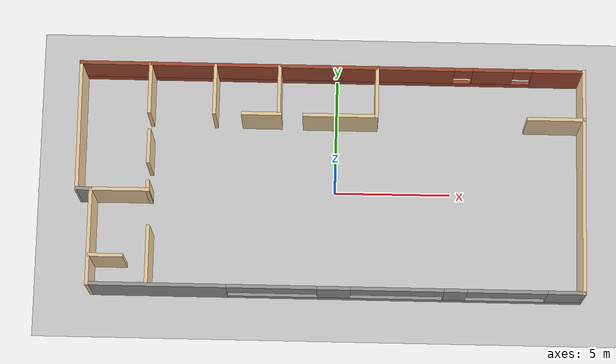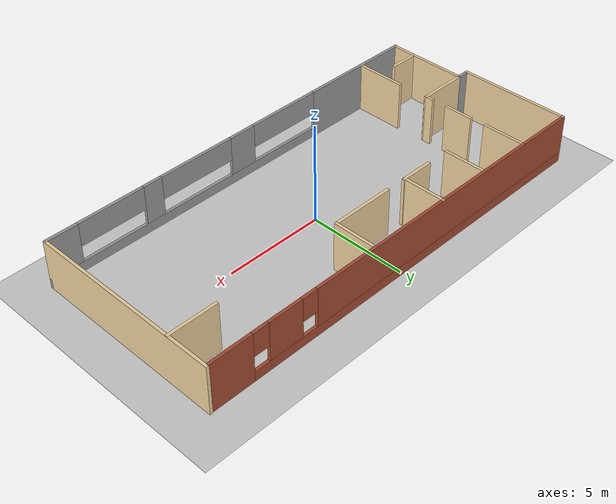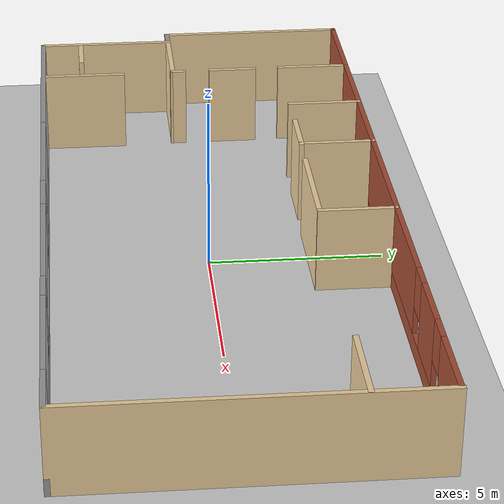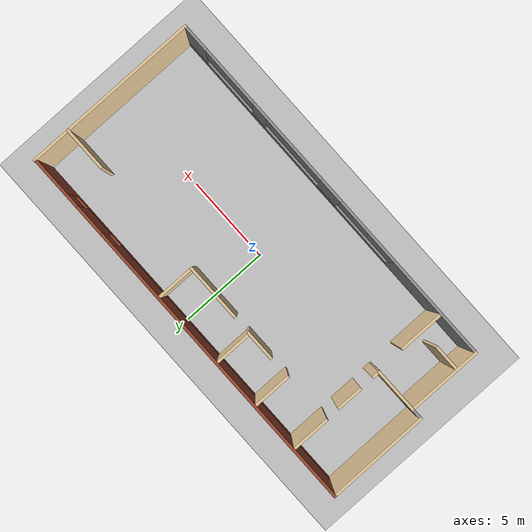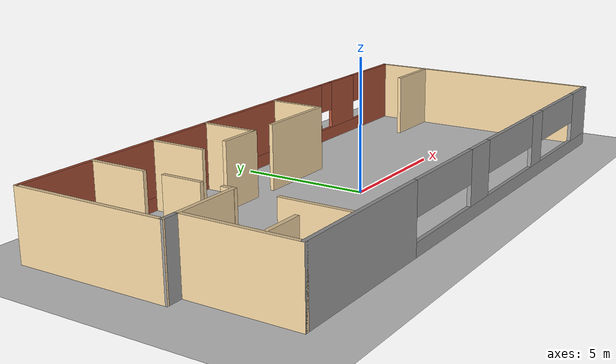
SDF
<sdf version="1.6">
 <world name="default">
  <model name="ground_plane">
   <static>1</static>
   <link name="link">
    <collision name="collision">
     <geometry><plane><normal>0 0 1</normal><size>100 100</size></plane></geometry>
     <surface>
      <contact><collide_bitmask>65535</collide_bitmask></contact>
      <friction><ode><mu>100</mu><mu2>50</mu2></ode></friction>
     </surface>
    </collision>
    <visual name="visual">
     <cast_shadows>0</cast_shadows>
     <geometry><plane><normal>0 0 1</normal><size>100 100</size></plane></geometry>
     <material>
      <script><uri>file://media/materials/scripts/gazebo.material</uri><name>Gazebo/Grey</name></script>
     </material>
    </visual>
   </link>
  </model>
  <model name="structureP1">
   <link name="Wall_0">
    <pose>-0.049796 4.83077 0 0 -0 3.14159</pose>
    <visual name="Wall_0_Visual_0">
     <pose>-9.78293 0 1.25 0 -0 0</pose>
     <geometry><box><size>2.18414 0.15 2.5</size></box></geometry>
     <material>
      <script><uri>file://media/materials/scripts/gazebo.material</uri><name>Gazebo/Bricks</name></script>
      <ambient>1 1 1 1</ambient>
      <shader type="pixel"/>
      <diffuse>1 1 1 1</diffuse>
      <specular>0.2 0.2 0.2 1</specular>
      <emissive>0 0 0 1</emissive>
     </material>
     <meta><layer>0</layer></meta>
    </visual>
    <visual name="Wall_0_Visual_1">
     <pose>1.09207 0 0.25 0 -0 0</pose>
     <geometry><box><size>19.5659 0.15 0.5</size></box></geometry>
     <material>
      <script><uri>file://media/materials/scripts/gazebo.material</uri><name>Gazebo/Bricks</name></script>
      <ambient>1 1 1 1</ambient>
      <shader type="pixel"/>
      <diffuse>1 1 1 1</diffuse>
      <specular>0.2 0.2 0.2 1</specular>
      <emissive>0 0 0 1</emissive>
     </material>
     <meta><layer>0</layer></meta>
    </visual>
    <visual name="Wall_0_Visual_2">
     <pose>-7.00793 0 1.5 0 -0 0</pose>
     <geometry><box><size>1.76586 0.15 2</size></box></geometry>
     <material>
      <script><uri>file://media/materials/scripts/gazebo.material</uri><name>Gazebo/Bricks</name></script>
      <ambient>1 1 1 1</ambient>
      <shader type="pixel"/>
      <diffuse>1 1 1 1</diffuse>
      <specular>0.2 0.2 0.2 1</specular>
      <emissive>0 0 0 1</emissive>
     </material>
     <meta><layer>0</layer></meta>
    </visual>
    <visual name="Wall_0_Visual_3">
     <pose>2.775 0 1.5 0 -0 0</pose>
     <geometry><box><size>16.2 0.15 2</size></box></geometry>
     <material>
      <script><uri>file://media/materials/scripts/gazebo.material</uri><name>Gazebo/Bricks</name></script>
      <ambient>1 1 1 1</ambient>
      <shader type="pixel"/>
      <diffuse>1 1 1 1</diffuse>
      <specular>0.2 0.2 0.2 1</specular>
      <emissive>0 0 0 1</emissive>
     </material>
     <meta><layer>0</layer></meta>
    </visual>
    <visual name="Wall_0_Visual_4">
     <pose>-8.29086 0 1.9 0 -0 0</pose>
     <geometry><box><size>0.8 0.15 1.2</size></box></geometry>
     <material>
      <script><uri>file://media/materials/scripts/gazebo.material</uri><name>Gazebo/Bricks</name></script>
      <ambient>1 1 1 1</ambient>
      <shader type="pixel"/>
      <diffuse>1 1 1 1</diffuse>
      <specular>0.2 0.2 0.2 1</specular>
      <emissive>0 0 0 1</emissive>
     </material>
     <meta><layer>0</layer></meta>
    </visual>
    <visual name="Wall_0_Visual_5">
     <pose>-5.72499 0 1.9 0 -0 0</pose>
     <geometry><box><size>0.8 0.15 1.2</size></box></geometry>
     <material>
      <script><uri>file://media/materials/scripts/gazebo.material</uri><name>Gazebo/Bricks</name></script>
      <ambient>1 1 1 1</ambient>
      <shader type="pixel"/>
      <diffuse>1 1 1 1</diffuse>
      <specular>0.2 0.2 0.2 1</specular>
      <emissive>0 0 0 1</emissive>
     </material>
     <meta><layer>0</layer></meta>
    </visual>
    <collision name="Wall_0_Collision_2">
     <pose>-7.00793 0 1.5 0 -0 0</pose>
     <geometry><box><size>1.76586 0.15 2</size></box></geometry>
     <surface>
      <friction>
       <ode><mu>1</mu><mu2>1</mu2><fdir1>0 0 0</fdir1><slip1>0</slip1><slip2>0</slip2></ode>
       <torsional>
        <coefficient>1</coefficient>
        <patch_radius>0</patch_radius>
        <surface_radius>0</surface_radius>
        <use_patch_radius>1</use_patch_radius>
        <ode><slip>0</slip></ode>
       </torsional>
      </friction>
      <bounce><restitution_coefficient>0</restitution_coefficient><threshold>1e+06</threshold></bounce>
      <contact>
       <collide_without_contact>0</collide_without_contact>
       <collide_without_contact_bitmask>1</collide_without_contact_bitmask>
       <collide_bitmask>1</collide_bitmask>
       <ode>
        <soft_cfm>0</soft_cfm>
        <soft_erp>0.2</soft_erp>
        <kp>1e+13</kp>
        <kd>1</kd>
        <max_vel>0.01</max_vel>
        <min_depth>0</min_depth>
       </ode>
       <bullet>
        <split_impulse>1</split_impulse>
        <split_impulse_penetration_threshold>-0.01</split_impulse_penetration_threshold>
        <soft_cfm>0</soft_cfm>
        <soft_erp>0.2</soft_erp>
        <kp>1e+13</kp>
        <kd>1</kd>
       </bullet>
      </contact>
     </surface>
    </collision>
    <collision name="Wall_0_Collision_0">
     <pose>-9.78293 0 1.25 0 -0 0</pose>
     <geometry><box><size>2.18414 0.15 2.5</size></box></geometry>
     <surface>
      <friction>
       <ode><mu>1</mu><mu2>1</mu2><fdir1>0 0 0</fdir1><slip1>0</slip1><slip2>0</slip2></ode>
       <torsional>
        <coefficient>1</coefficient>
        <patch_radius>0</patch_radius>
        <surface_radius>0</surface_radius>
        <use_patch_radius>1</use_patch_radius>
        <ode><slip>0</slip></ode>
       </torsional>
      </friction>
      <bounce><restitution_coefficient>0</restitution_coefficient><threshold>1e+06</threshold></bounce>
      <contact>
       <collide_without_contact>0</collide_without_contact>
       <collide_without_contact_bitmask>1</collide_without_contact_bitmask>
       <collide_bitmask>1</collide_bitmask>
       <ode>
        <soft_cfm>0</soft_cfm>
        <soft_erp>0.2</soft_erp>
        <kp>1e+13</kp>
        <kd>1</kd>
        <max_vel>0.01</max_vel>
        <min_depth>0</min_depth>
       </ode>
       <bullet>
        <split_impulse>1</split_impulse>
        <split_impulse_penetration_threshold>-0.01</split_impulse_penetration_threshold>
        <soft_cfm>0</soft_cfm>
        <soft_erp>0.2</soft_erp>
        <kp>1e+13</kp>
        <kd>1</kd>
       </bullet>
      </contact>
     </surface>
    </collision>
    <collision name="Wall_0_Collision_1">
     <pose>1.09207 0 0.25 0 -0 0</pose>
     <geometry><box><size>19.5659 0.15 0.5</size></box></geometry>
     <surface>
      <friction>
       <ode><mu>1</mu><mu2>1</mu2><fdir1>0 0 0</fdir1><slip1>0</slip1><slip2>0</slip2></ode>
       <torsional>
        <coefficient>1</coefficient>
        <patch_radius>0</patch_radius>
        <surface_radius>0</surface_radius>
        <use_patch_radius>1</use_patch_radius>
        <ode><slip>0</slip></ode>
       </torsional>
      </friction>
      <bounce><restitution_coefficient>0</restitution_coefficient><threshold>1e+06</threshold></bounce>
      <contact>
       <collide_without_contact>0</collide_without_contact>
       <collide_without_contact_bitmask>1</collide_without_contact_bitmask>
       <collide_bitmask>1</collide_bitmask>
       <ode>
        <soft_cfm>0</soft_cfm>
        <soft_erp>0.2</soft_erp>
        <kp>1e+13</kp>
        <kd>1</kd>
        <max_vel>0.01</max_vel>
        <min_depth>0</min_depth>
       </ode>
       <bullet>
        <split_impulse>1</split_impulse>
        <split_impulse_penetration_threshold>-0.01</split_impulse_penetration_threshold>
        <soft_cfm>0</soft_cfm>
        <soft_erp>0.2</soft_erp>
        <kp>1e+13</kp>
        <kd>1</kd>
       </bullet>
      </contact>
     </surface>
    </collision>
    <collision name="Wall_0_Collision_5">
     <pose>-5.72499 0 1.9 0 -0 0</pose>
     <geometry><box><size>0.8 0.15 1.2</size></box></geometry>
     <surface>
      <friction>
       <ode><mu>1</mu><mu2>1</mu2><fdir1>0 0 0</fdir1><slip1>0</slip1><slip2>0</slip2></ode>
       <torsional>
        <coefficient>1</coefficient>
        <patch_radius>0</patch_radius>
        <surface_radius>0</surface_radius>
        <use_patch_radius>1</use_patch_radius>
        <ode><slip>0</slip></ode>
       </torsional>
      </friction>
      <bounce><restitution_coefficient>0</restitution_coefficient><threshold>1e+06</threshold></bounce>
      <contact>
       <collide_without_contact>0</collide_without_contact>
       <collide_without_contact_bitmask>1</collide_without_contact_bitmask>
       <collide_bitmask>1</collide_bitmask>
       <ode>
        <soft_cfm>0</soft_cfm>
        <soft_erp>0.2</soft_erp>
        <kp>1e+13</kp>
        <kd>1</kd>
        <max_vel>0.01</max_vel>
        <min_depth>0</min_depth>
       </ode>
       <bullet>
        <split_impulse>1</split_impulse>
        <split_impulse_penetration_threshold>-0.01</split_impulse_penetration_threshold>
        <soft_cfm>0</soft_cfm>
        <soft_erp>0.2</soft_erp>
        <kp>1e+13</kp>
        <kd>1</kd>
       </bullet>
      </contact>
     </surface>
    </collision>
    <collision name="Wall_0_Collision_3">
     <pose>2.775 0 1.5 0 -0 0</pose>
     <geometry><box><size>16.2 0.15 2</size></box></geometry>
     <surface>
      <friction>
       <ode><mu>1</mu><mu2>1</mu2><fdir1>0 0 0</fdir1><slip1>0</slip1><slip2>0</slip2></ode>
       <torsional>
        <coefficient>1</coefficient>
        <patch_radius>0</patch_radius>
        <surface_radius>0</surface_radius>
        <use_patch_radius>1</use_patch_radius>
        <ode><slip>0</slip></ode>
       </torsional>
      </friction>
      <bounce><restitution_coefficient>0</restitution_coefficient><threshold>1e+06</threshold></bounce>
      <contact>
       <collide_without_contact>0</collide_without_contact>
       <collide_without_contact_bitmask>1</collide_without_contact_bitmask>
       <collide_bitmask>1</collide_bitmask>
       <ode>
        <soft_cfm>0</soft_cfm>
        <soft_erp>0.2</soft_erp>
        <kp>1e+13</kp>
        <kd>1</kd>
        <max_vel>0.01</max_vel>
        <min_depth>0</min_depth>
       </ode>
       <bullet>
        <split_impulse>1</split_impulse>
        <split_impulse_penetration_threshold>-0.01</split_impulse_penetration_threshold>
        <soft_cfm>0</soft_cfm>
        <soft_erp>0.2</soft_erp>
        <kp>1e+13</kp>
        <kd>1</kd>
       </bullet>
      </contact>
     </surface>
    </collision>
    <collision name="Wall_0_Collision_4">
     <pose>-8.29086 0 1.9 0 -0 0</pose>
     <geometry><box><size>0.8 0.15 1.2</size></box></geometry>
     <surface>
      <friction>
       <ode><mu>1</mu><mu2>1</mu2><fdir1>0 0 0</fdir1><slip1>0</slip1><slip2>0</slip2></ode>
       <torsional>
        <coefficient>1</coefficient>
        <patch_radius>0</patch_radius>
        <surface_radius>0</surface_radius>
        <use_patch_radius>1</use_patch_radius>
        <ode><slip>0</slip></ode>
       </torsional>
      </friction>
      <bounce><restitution_coefficient>0</restitution_coefficient><threshold>1e+06</threshold></bounce>
      <contact>
       <collide_without_contact>0</collide_without_contact>
       <collide_without_contact_bitmask>1</collide_without_contact_bitmask>
       <collide_bitmask>1</collide_bitmask>
       <ode>
        <soft_cfm>0</soft_cfm>
        <soft_erp>0.2</soft_erp>
        <kp>1e+13</kp>
        <kd>1</kd>
        <max_vel>0.01</max_vel>
        <min_depth>0</min_depth>
       </ode>
       <bullet>
        <split_impulse>1</split_impulse>
        <split_impulse_penetration_threshold>-0.01</split_impulse_penetration_threshold>
        <soft_cfm>0</soft_cfm>
        <soft_erp>0.2</soft_erp>
        <kp>1e+13</kp>
        <kd>1</kd>
       </bullet>
      </contact>
     </surface>
    </collision>
   </link>
   <link name="Wall_1">
    <pose>-10.8498 2.03077 0 0 0 -1.56533</pose>
    <visual name="Wall_1_Visual">
     <pose>0 0 1.25 0 -0 0</pose>
     <geometry><box><size>5.71967 0.15 2.5</size></box></geometry>
     <material>
      <script><uri>file://media/materials/scripts/gazebo.material</uri><name>Gazebo/Grey</name></script>
      <ambient>0.921569 0.807843 0.615686 1</ambient>
      <shader type="pixel"/>
      <diffuse>0.7 0.7 0.7 1</diffuse>
      <specular>0.01 0.01 0.01 1</specular>
      <emissive>0 0 0 1</emissive>
     </material>
     <meta><layer>0</layer></meta>
    </visual>
    <collision name="Wall_1_Collision">
     <pose>0 0 1.25 0 -0 0</pose>
     <geometry><box><size>5.71967 0.15 2.5</size></box></geometry>
     <surface>
      <friction>
       <ode><mu>1</mu><mu2>1</mu2><fdir1>0 0 0</fdir1><slip1>0</slip1><slip2>0</slip2></ode>
       <torsional>
        <coefficient>1</coefficient>
        <patch_radius>0</patch_radius>
        <surface_radius>0</surface_radius>
        <use_patch_radius>1</use_patch_radius>
        <ode><slip>0</slip></ode>
       </torsional>
      </friction>
      <bounce><restitution_coefficient>0</restitution_coefficient><threshold>1e+06</threshold></bounce>
      <contact>
       <collide_without_contact>0</collide_without_contact>
       <collide_without_contact_bitmask>1</collide_without_contact_bitmask>
       <collide_bitmask>1</collide_bitmask>
       <ode>
        <soft_cfm>0</soft_cfm>
        <soft_erp>0.2</soft_erp>
        <kp>1e+13</kp>
        <kd>1</kd>
        <max_vel>0.01</max_vel>
        <min_depth>0</min_depth>
       </ode>
       <bullet>
        <split_impulse>1</split_impulse>
        <split_impulse_penetration_threshold>-0.01</split_impulse_penetration_threshold>
        <soft_cfm>0</soft_cfm>
        <soft_erp>0.2</soft_erp>
        <kp>1e+13</kp>
        <kd>1</kd>
       </bullet>
      </contact>
     </surface>
    </collision>
   </link>
   <link name="Wall_13">
    <pose>-9.01867 -0.748904 0 0 -0 0.004206</pose>
    <visual name="Wall_13_Visual">
     <pose>0 0 1.25 0 -0 0</pose>
     <geometry><box><size>2.58183 0.15 2.5</size></box></geometry>
     <material>
      <script><uri>file://media/materials/scripts/gazebo.material</uri><name>Gazebo/Grey</name></script>
      <ambient>0.921569 0.807843 0.615686 1</ambient>
      <shader type="pixel"/>
      <diffuse>0.7 0.7 0.7 1</diffuse>
      <specular>0.01 0.01 0.01 1</specular>
      <emissive>0 0 0 1</emissive>
     </material>
     <meta><layer>0</layer></meta>
    </visual>
    <collision name="Wall_13_Collision">
     <pose>0 0 1.25 0 -0 0</pose>
     <geometry><box><size>2.58183 0.15 2.5</size></box></geometry>
     <surface>
      <friction>
       <ode><mu>1</mu><mu2>1</mu2><fdir1>0 0 0</fdir1><slip1>0</slip1><slip2>0</slip2></ode>
       <torsional>
        <coefficient>1</coefficient>
        <patch_radius>0</patch_radius>
        <surface_radius>0</surface_radius>
        <use_patch_radius>1</use_patch_radius>
        <ode><slip>0</slip></ode>
       </torsional>
      </friction>
      <bounce><restitution_coefficient>0</restitution_coefficient><threshold>1e+06</threshold></bounce>
      <contact>
       <collide_without_contact>0</collide_without_contact>
       <collide_without_contact_bitmask>1</collide_without_contact_bitmask>
       <collide_bitmask>1</collide_bitmask>
       <ode>
        <soft_cfm>0</soft_cfm>
        <soft_erp>0.2</soft_erp>
        <kp>1e+13</kp>
        <kd>1</kd>
        <max_vel>0.01</max_vel>
        <min_depth>0</min_depth>
       </ode>
       <bullet>
        <split_impulse>1</split_impulse>
        <split_impulse_penetration_threshold>-0.01</split_impulse_penetration_threshold>
        <soft_cfm>0</soft_cfm>
        <soft_erp>0.2</soft_erp>
        <kp>1e+13</kp>
        <kd>1</kd>
       </bullet>
      </contact>
     </surface>
    </collision>
   </link>
   <link name="Wall_15">
    <pose>-7.80276 -0.579018 0 0 -0 1.5708</pose>
    <visual name="Wall_15_Visual">
     <pose>0 0 1.25 0 -0 0</pose>
     <geometry><box><size>0.5 0.15 2.5</size></box></geometry>
     <material>
      <script><uri>file://media/materials/scripts/gazebo.material</uri><name>Gazebo/Grey</name></script>
      <ambient>0.921569 0.807843 0.615686 1</ambient>
      <shader type="pixel"/>
      <diffuse>0.7 0.7 0.7 1</diffuse>
      <specular>0.01 0.01 0.01 1</specular>
      <emissive>0 0 0 1</emissive>
     </material>
     <meta><layer>0</layer></meta>
    </visual>
    <collision name="Wall_15_Collision">
     <pose>0 0 1.25 0 -0 0</pose>
     <geometry><box><size>0.5 0.15 2.5</size></box></geometry>
     <surface>
      <friction>
       <ode><mu>1</mu><mu2>1</mu2><fdir1>0 0 0</fdir1><slip1>0</slip1><slip2>0</slip2></ode>
       <torsional>
        <coefficient>1</coefficient>
        <patch_radius>0</patch_radius>
        <surface_radius>0</surface_radius>
        <use_patch_radius>1</use_patch_radius>
        <ode><slip>0</slip></ode>
       </torsional>
      </friction>
      <bounce><restitution_coefficient>0</restitution_coefficient><threshold>1e+06</threshold></bounce>
      <contact>
       <collide_without_contact>0</collide_without_contact>
       <collide_without_contact_bitmask>1</collide_without_contact_bitmask>
       <collide_bitmask>1</collide_bitmask>
       <ode>
        <soft_cfm>0</soft_cfm>
        <soft_erp>0.2</soft_erp>
        <kp>1e+13</kp>
        <kd>1</kd>
        <max_vel>0.01</max_vel>
        <min_depth>0</min_depth>
       </ode>
       <bullet>
        <split_impulse>1</split_impulse>
        <split_impulse_penetration_threshold>-0.01</split_impulse_penetration_threshold>
        <soft_cfm>0</soft_cfm>
        <soft_erp>0.2</soft_erp>
        <kp>1e+13</kp>
        <kd>1</kd>
       </bullet>
      </contact>
     </surface>
    </collision>
   </link>
   <link name="Wall_17">
    <pose>-7.82409 1.16553 0 0 -0 1.5708</pose>
    <visual name="Wall_17_Visual">
     <pose>0 0 1.25 0 -0 0</pose>
     <geometry><box><size>1.5 0.15 2.5</size></box></geometry>
     <material>
      <script><uri>file://media/materials/scripts/gazebo.material</uri><name>Gazebo/Grey</name></script>
      <ambient>0.921569 0.807843 0.615686 1</ambient>
      <shader type="pixel"/>
      <diffuse>0.7 0.7 0.7 1</diffuse>
      <specular>0.01 0.01 0.01 1</specular>
      <emissive>0 0 0 1</emissive>
     </material>
     <meta><layer>0</layer></meta>
    </visual>
    <collision name="Wall_17_Collision">
     <pose>0 0 1.25 0 -0 0</pose>
     <geometry><box><size>1.5 0.15 2.5</size></box></geometry>
     <surface>
      <friction>
       <ode><mu>1</mu><mu2>1</mu2><fdir1>0 0 0</fdir1><slip1>0</slip1><slip2>0</slip2></ode>
       <torsional>
        <coefficient>1</coefficient>
        <patch_radius>0</patch_radius>
        <surface_radius>0</surface_radius>
        <use_patch_radius>1</use_patch_radius>
        <ode><slip>0</slip></ode>
       </torsional>
      </friction>
      <bounce><restitution_coefficient>0</restitution_coefficient><threshold>1e+06</threshold></bounce>
      <contact>
       <collide_without_contact>0</collide_without_contact>
       <collide_without_contact_bitmask>1</collide_without_contact_bitmask>
       <collide_bitmask>1</collide_bitmask>
       <ode>
        <soft_cfm>0</soft_cfm>
        <soft_erp>0.2</soft_erp>
        <kp>1e+13</kp>
        <kd>1</kd>
        <max_vel>0.01</max_vel>
        <min_depth>0</min_depth>
       </ode>
       <bullet>
        <split_impulse>1</split_impulse>
        <split_impulse_penetration_threshold>-0.01</split_impulse_penetration_threshold>
        <soft_cfm>0</soft_cfm>
        <soft_erp>0.2</soft_erp>
        <kp>1e+13</kp>
        <kd>1</kd>
       </bullet>
      </contact>
     </surface>
    </collision>
   </link>
   <link name="Wall_19">
    <pose>-7.86075 3.75644 0 0 -0 1.5708</pose>
    <visual name="Wall_19_Visual">
     <pose>0 0 1.25 0 -0 0</pose>
     <geometry><box><size>2.25 0.15 2.5</size></box></geometry>
     <material>
      <script><uri>file://media/materials/scripts/gazebo.material</uri><name>Gazebo/Grey</name></script>
      <ambient>0.921569 0.807843 0.615686 1</ambient>
      <shader type="pixel"/>
      <diffuse>0.7 0.7 0.7 1</diffuse>
      <specular>0.01 0.01 0.01 1</specular>
      <emissive>0 0 0 1</emissive>
     </material>
     <meta><layer>0</layer></meta>
    </visual>
    <collision name="Wall_19_Collision">
     <pose>0 0 1.25 0 -0 0</pose>
     <geometry><box><size>2.25 0.15 2.5</size></box></geometry>
     <surface>
      <friction>
       <ode><mu>1</mu><mu2>1</mu2><fdir1>0 0 0</fdir1><slip1>0</slip1><slip2>0</slip2></ode>
       <torsional>
        <coefficient>1</coefficient>
        <patch_radius>0</patch_radius>
        <surface_radius>0</surface_radius>
        <use_patch_radius>1</use_patch_radius>
        <ode><slip>0</slip></ode>
       </torsional>
      </friction>
      <bounce><restitution_coefficient>0</restitution_coefficient><threshold>1e+06</threshold></bounce>
      <contact>
       <collide_without_contact>0</collide_without_contact>
       <collide_without_contact_bitmask>1</collide_without_contact_bitmask>
       <collide_bitmask>1</collide_bitmask>
       <ode>
        <soft_cfm>0</soft_cfm>
        <soft_erp>0.2</soft_erp>
        <kp>1e+13</kp>
        <kd>1</kd>
        <max_vel>0.01</max_vel>
        <min_depth>0</min_depth>
       </ode>
       <bullet>
        <split_impulse>1</split_impulse>
        <split_impulse_penetration_threshold>-0.01</split_impulse_penetration_threshold>
        <soft_cfm>0</soft_cfm>
        <soft_erp>0.2</soft_erp>
        <kp>1e+13</kp>
        <kd>1</kd>
       </bullet>
      </contact>
     </surface>
    </collision>
   </link>
   <link name="Wall_2">
    <pose>-10.5346 -0.754018 0 0 -0 0</pose>
    <visual name="Wall_2_Visual">
     <pose>0 0 1.25 0 -0 0</pose>
     <geometry><box><size>0.75 0.15 2.5</size></box></geometry>
     <material>
      <script><uri>file://media/materials/scripts/gazebo.material</uri><name>Gazebo/Grey</name></script>
      <ambient>1 1 1 1</ambient>
      <shader type="pixel"/>
      <diffuse>0.7 0.7 0.7 1</diffuse>
      <specular>0.01 0.01 0.01 1</specular>
      <emissive>0 0 0 1</emissive>
     </material>
     <meta><layer>0</layer></meta>
    </visual>
    <collision name="Wall_2_Collision">
     <pose>0 0 1.25 0 -0 0</pose>
     <geometry><box><size>0.75 0.15 2.5</size></box></geometry>
     <surface>
      <friction>
       <ode><mu>1</mu><mu2>1</mu2><fdir1>0 0 0</fdir1><slip1>0</slip1><slip2>0</slip2></ode>
       <torsional>
        <coefficient>1</coefficient>
        <patch_radius>0</patch_radius>
        <surface_radius>0</surface_radius>
        <use_patch_radius>1</use_patch_radius>
        <ode><slip>0</slip></ode>
       </torsional>
      </friction>
      <bounce><restitution_coefficient>0</restitution_coefficient><threshold>1e+06</threshold></bounce>
      <contact>
       <collide_without_contact>0</collide_without_contact>
       <collide_without_contact_bitmask>1</collide_without_contact_bitmask>
       <collide_bitmask>1</collide_bitmask>
       <ode>
        <soft_cfm>0</soft_cfm>
        <soft_erp>0.2</soft_erp>
        <kp>1e+13</kp>
        <kd>1</kd>
        <max_vel>0.01</max_vel>
        <min_depth>0</min_depth>
       </ode>
       <bullet>
        <split_impulse>1</split_impulse>
        <split_impulse_penetration_threshold>-0.01</split_impulse_penetration_threshold>
        <soft_cfm>0</soft_cfm>
        <soft_erp>0.2</soft_erp>
        <kp>1e+13</kp>
        <kd>1</kd>
       </bullet>
      </contact>
     </surface>
    </collision>
   </link>
   <link name="Wall_28">
    <pose>-3.02903 2.70644 0 0 -0 0</pose>
    <visual name="Wall_28_Visual">
     <pose>0 0 1.25 0 -0 0</pose>
     <geometry><box><size>1.75 0.15 2.5</size></box></geometry>
     <material>
      <script><uri>file://media/materials/scripts/gazebo.material</uri><name>Gazebo/Grey</name></script>
      <ambient>0.921569 0.807843 0.615686 1</ambient>
      <shader type="pixel"/>
      <diffuse>0.7 0.7 0.7 1</diffuse>
      <specular>0.01 0.01 0.01 1</specular>
      <emissive>0 0 0 1</emissive>
     </material>
     <meta><layer>0</layer></meta>
    </visual>
    <collision name="Wall_28_Collision">
     <pose>0 0 1.25 0 -0 0</pose>
     <geometry><box><size>1.75 0.15 2.5</size></box></geometry>
     <surface>
      <friction>
       <ode><mu>1</mu><mu2>1</mu2><fdir1>0 0 0</fdir1><slip1>0</slip1><slip2>0</slip2></ode>
       <torsional>
        <coefficient>1</coefficient>
        <patch_radius>0</patch_radius>
        <surface_radius>0</surface_radius>
        <use_patch_radius>1</use_patch_radius>
        <ode><slip>0</slip></ode>
       </torsional>
      </friction>
      <bounce><restitution_coefficient>0</restitution_coefficient><threshold>1e+06</threshold></bounce>
      <contact>
       <collide_without_contact>0</collide_without_contact>
       <collide_without_contact_bitmask>1</collide_without_contact_bitmask>
       <collide_bitmask>1</collide_bitmask>
       <ode>
        <soft_cfm>0</soft_cfm>
        <soft_erp>0.2</soft_erp>
        <kp>1e+13</kp>
        <kd>1</kd>
        <max_vel>0.01</max_vel>
        <min_depth>0</min_depth>
       </ode>
       <bullet>
        <split_impulse>1</split_impulse>
        <split_impulse_penetration_threshold>-0.01</split_impulse_penetration_threshold>
        <soft_cfm>0</soft_cfm>
        <soft_erp>0.2</soft_erp>
        <kp>1e+13</kp>
        <kd>1</kd>
       </bullet>
      </contact>
     </surface>
    </collision>
   </link>
   <link name="Wall_3">
    <pose>-10.2346 -2.80402 0 0 0 -1.5708</pose>
    <visual name="Wall_3_Visual">
     <pose>0 0 1.25 0 -0 0</pose>
     <geometry><box><size>4.25 0.15 2.5</size></box></geometry>
     <material>
      <script><uri>file://media/materials/scripts/gazebo.material</uri><name>Gazebo/Grey</name></script>
      <ambient>0.921569 0.807843 0.615686 1</ambient>
      <shader type="pixel"/>
      <diffuse>0.7 0.7 0.7 1</diffuse>
      <specular>0.01 0.01 0.01 1</specular>
      <emissive>0 0 0 1</emissive>
     </material>
     <meta><layer>0</layer></meta>
    </visual>
    <collision name="Wall_3_Collision">
     <pose>0 0 1.25 0 -0 0</pose>
     <geometry><box><size>4.25 0.15 2.5</size></box></geometry>
     <surface>
      <friction>
       <ode><mu>1</mu><mu2>1</mu2><fdir1>0 0 0</fdir1><slip1>0</slip1><slip2>0</slip2></ode>
       <torsional>
        <coefficient>1</coefficient>
        <patch_radius>0</patch_radius>
        <surface_radius>0</surface_radius>
        <use_patch_radius>1</use_patch_radius>
        <ode><slip>0</slip></ode>
       </torsional>
      </friction>
      <bounce><restitution_coefficient>0</restitution_coefficient><threshold>1e+06</threshold></bounce>
      <contact>
       <collide_without_contact>0</collide_without_contact>
       <collide_without_contact_bitmask>1</collide_without_contact_bitmask>
       <collide_bitmask>1</collide_bitmask>
       <ode>
        <soft_cfm>0</soft_cfm>
        <soft_erp>0.2</soft_erp>
        <kp>1e+13</kp>
        <kd>1</kd>
        <max_vel>0.01</max_vel>
        <min_depth>0</min_depth>
       </ode>
       <bullet>
        <split_impulse>1</split_impulse>
        <split_impulse_penetration_threshold>-0.01</split_impulse_penetration_threshold>
        <soft_cfm>0</soft_cfm>
        <soft_erp>0.2</soft_erp>
        <kp>1e+13</kp>
        <kd>1</kd>
       </bullet>
      </contact>
     </surface>
    </collision>
   </link>
   <link name="Wall_32">
    <pose>9.66593 2.70483 0 0 -0 0</pose>
    <visual name="Wall_32_Visual">
     <pose>0 0 1.25 0 -0 0</pose>
     <geometry><box><size>2.5 0.15 2.5</size></box></geometry>
     <material>
      <script><uri>file://media/materials/scripts/gazebo.material</uri><name>Gazebo/Grey</name></script>
      <ambient>0.921569 0.807843 0.615686 1</ambient>
      <shader type="pixel"/>
      <diffuse>0.7 0.7 0.7 1</diffuse>
      <specular>0.01 0.01 0.01 1</specular>
      <emissive>0 0 0 1</emissive>
     </material>
     <meta><layer>0</layer></meta>
    </visual>
    <collision name="Wall_32_Collision">
     <pose>0 0 1.25 0 -0 0</pose>
     <geometry><box><size>2.5 0.15 2.5</size></box></geometry>
     <surface>
      <friction>
       <ode><mu>1</mu><mu2>1</mu2><fdir1>0 0 0</fdir1><slip1>0</slip1><slip2>0</slip2></ode>
       <torsional>
        <coefficient>1</coefficient>
        <patch_radius>0</patch_radius>
        <surface_radius>0</surface_radius>
        <use_patch_radius>1</use_patch_radius>
        <ode><slip>0</slip></ode>
       </torsional>
      </friction>
      <bounce><restitution_coefficient>0</restitution_coefficient><threshold>1e+06</threshold></bounce>
      <contact>
       <collide_without_contact>0</collide_without_contact>
       <collide_without_contact_bitmask>1</collide_without_contact_bitmask>
       <collide_bitmask>1</collide_bitmask>
       <ode>
        <soft_cfm>0</soft_cfm>
        <soft_erp>0.2</soft_erp>
        <kp>1e+13</kp>
        <kd>1</kd>
        <max_vel>0.01</max_vel>
        <min_depth>0</min_depth>
       </ode>
       <bullet>
        <split_impulse>1</split_impulse>
        <split_impulse_penetration_threshold>-0.01</split_impulse_penetration_threshold>
        <soft_cfm>0</soft_cfm>
        <soft_erp>0.2</soft_erp>
        <kp>1e+13</kp>
        <kd>1</kd>
       </bullet>
      </contact>
     </surface>
    </collision>
   </link>
   <link name="Wall_39">
    <pose>0.371789 2.68623 0 0 -0 0</pose>
    <visual name="Wall_39_Visual">
     <pose>0 0 1.25 0 -0 0</pose>
     <geometry><box><size>3.25 0.15 2.5</size></box></geometry>
     <material>
      <script><uri>file://media/materials/scripts/gazebo.material</uri><name>Gazebo/Grey</name></script>
      <ambient>0.921569 0.807843 0.615686 1</ambient>
      <shader type="pixel"/>
      <diffuse>0.7 0.7 0.7 1</diffuse>
      <specular>0.01 0.01 0.01 1</specular>
      <emissive>0 0 0 1</emissive>
     </material>
     <meta><layer>0</layer></meta>
    </visual>
    <collision name="Wall_39_Collision">
     <pose>0 0 1.25 0 -0 0</pose>
     <geometry><box><size>3.25 0.15 2.5</size></box></geometry>
     <surface>
      <friction>
       <ode><mu>1</mu><mu2>1</mu2><fdir1>0 0 0</fdir1><slip1>0</slip1><slip2>0</slip2></ode>
       <torsional>
        <coefficient>1</coefficient>
        <patch_radius>0</patch_radius>
        <surface_radius>0</surface_radius>
        <use_patch_radius>1</use_patch_radius>
        <ode><slip>0</slip></ode>
       </torsional>
      </friction>
      <bounce><restitution_coefficient>0</restitution_coefficient><threshold>1e+06</threshold></bounce>
      <contact>
       <collide_without_contact>0</collide_without_contact>
       <collide_without_contact_bitmask>1</collide_without_contact_bitmask>
       <collide_bitmask>1</collide_bitmask>
       <ode>
        <soft_cfm>0</soft_cfm>
        <soft_erp>0.2</soft_erp>
        <kp>1e+13</kp>
        <kd>1</kd>
        <max_vel>0.01</max_vel>
        <min_depth>0</min_depth>
       </ode>
       <bullet>
        <split_impulse>1</split_impulse>
        <split_impulse_penetration_threshold>-0.01</split_impulse_penetration_threshold>
        <soft_cfm>0</soft_cfm>
        <soft_erp>0.2</soft_erp>
        <kp>1e+13</kp>
        <kd>1</kd>
       </bullet>
      </contact>
     </surface>
    </collision>
   </link>
   <link name="Wall_4">
    <pose>0.315413 -4.85402 0 0 -0 0</pose>
    <visual name="Wall_4_Visual_0">
     <pose>-7.63578 0 1.25 0 -0 0</pose>
     <geometry><box><size>5.97845 0.15 2.5</size></box></geometry>
     <material>
      <script><uri>file://media/materials/scripts/gazebo.material</uri><name>Gazebo/Grey</name></script>
      <ambient>1 1 1 1</ambient>
      <shader type="pixel"/>
      <diffuse>0.7 0.7 0.7 1</diffuse>
      <specular>0.01 0.01 0.01 1</specular>
      <emissive>0 0 0 1</emissive>
     </material>
     <meta><layer>0</layer></meta>
    </visual>
    <visual name="Wall_4_Visual_1">
     <pose>2.98922 0 0.25 0 -0 0</pose>
     <geometry><box><size>15.2716 0.15 0.5</size></box></geometry>
     <material>
      <script><uri>file://media/materials/scripts/gazebo.material</uri><name>Gazebo/Grey</name></script>
      <ambient>1 1 1 1</ambient>
      <shader type="pixel"/>
      <diffuse>0.7 0.7 0.7 1</diffuse>
      <specular>0.01 0.01 0.01 1</specular>
      <emissive>0 0 0 1</emissive>
     </material>
     <meta><layer>0</layer></meta>
    </visual>
    <visual name="Wall_4_Visual_2">
     <pose>-0.07985 0 1.5 0 -0 0</pose>
     <geometry><box><size>1.41641 0.15 2</size></box></geometry>
     <material>
      <script><uri>file://media/materials/scripts/gazebo.material</uri><name>Gazebo/Grey</name></script>
      <ambient>1 1 1 1</ambient>
      <shader type="pixel"/>
      <diffuse>0.7 0.7 0.7 1</diffuse>
      <specular>0.01 0.01 0.01 1</specular>
      <emissive>0 0 0 1</emissive>
     </material>
     <meta><layer>0</layer></meta>
    </visual>
    <visual name="Wall_4_Visual_3">
     <pose>5.09381 0 1.5 0 -0 0</pose>
     <geometry><box><size>0.983588 0.15 2</size></box></geometry>
     <material>
      <script><uri>file://media/materials/scripts/gazebo.material</uri><name>Gazebo/Grey</name></script>
      <ambient>1 1 1 1</ambient>
      <shader type="pixel"/>
      <diffuse>0.7 0.7 0.7 1</diffuse>
      <specular>0.01 0.01 0.01 1</specular>
      <emissive>0 0 0 1</emissive>
     </material>
     <meta><layer>0</layer></meta>
    </visual>
    <visual name="Wall_4_Visual_4">
     <pose>9.81177 0 1.5 0 -0 0</pose>
     <geometry><box><size>1.62645 0.15 2</size></box></geometry>
     <material>
      <script><uri>file://media/materials/scripts/gazebo.material</uri><name>Gazebo/Grey</name></script>
      <ambient>1 1 1 1</ambient>
      <shader type="pixel"/>
      <diffuse>0.7 0.7 0.7 1</diffuse>
      <specular>0.01 0.01 0.01 1</specular>
      <emissive>0 0 0 1</emissive>
     </material>
     <meta><layer>0</layer></meta>
    </visual>
    <visual name="Wall_4_Visual_5">
     <pose>-2.71731 0 1.9 0 -0 0</pose>
     <geometry><box><size>3.8585 0.15 1.2</size></box></geometry>
     <material>
      <script><uri>file://media/materials/scripts/gazebo.material</uri><name>Gazebo/Grey</name></script>
      <ambient>1 1 1 1</ambient>
      <shader type="pixel"/>
      <diffuse>0.7 0.7 0.7 1</diffuse>
      <specular>0.01 0.01 0.01 1</specular>
      <emissive>0 0 0 1</emissive>
     </material>
     <meta><layer>0</layer></meta>
    </visual>
    <visual name="Wall_4_Visual_6">
     <pose>2.61519 0 1.9 0 -0 0</pose>
     <geometry><box><size>3.97366 0.15 1.2</size></box></geometry>
     <material>
      <script><uri>file://media/materials/scripts/gazebo.material</uri><name>Gazebo/Grey</name></script>
      <ambient>1 1 1 1</ambient>
      <shader type="pixel"/>
      <diffuse>0.7 0.7 0.7 1</diffuse>
      <specular>0.01 0.01 0.01 1</specular>
      <emissive>0 0 0 1</emissive>
     </material>
     <meta><layer>0</layer></meta>
    </visual>
    <visual name="Wall_4_Visual_7">
     <pose>7.29208 0 1.9 0 -0 0</pose>
     <geometry><box><size>3.41294 0.15 1.2</size></box></geometry>
     <material>
      <script><uri>file://media/materials/scripts/gazebo.material</uri><name>Gazebo/Grey</name></script>
      <ambient>1 1 1 1</ambient>
      <shader type="pixel"/>
      <diffuse>0.7 0.7 0.7 1</diffuse>
      <specular>0.01 0.01 0.01 1</specular>
      <emissive>0 0 0 1</emissive>
     </material>
     <meta><layer>0</layer></meta>
    </visual>
    <collision name="Wall_4_Collision_0">
     <pose>-7.63578 0 1.25 0 -0 0</pose>
     <geometry><box><size>5.97845 0.15 2.5</size></box></geometry>
     <surface>
      <friction>
       <ode><mu>1</mu><mu2>1</mu2><fdir1>0 0 0</fdir1><slip1>0</slip1><slip2>0</slip2></ode>
       <torsional>
        <coefficient>1</coefficient>
        <patch_radius>0</patch_radius>
        <surface_radius>0</surface_radius>
        <use_patch_radius>1</use_patch_radius>
        <ode><slip>0</slip></ode>
       </torsional>
      </friction>
      <bounce><restitution_coefficient>0</restitution_coefficient><threshold>1e+06</threshold></bounce>
      <contact>
       <collide_without_contact>0</collide_without_contact>
       <collide_without_contact_bitmask>1</collide_without_contact_bitmask>
       <collide_bitmask>1</collide_bitmask>
       <ode>
        <soft_cfm>0</soft_cfm>
        <soft_erp>0.2</soft_erp>
        <kp>1e+13</kp>
        <kd>1</kd>
        <max_vel>0.01</max_vel>
        <min_depth>0</min_depth>
       </ode>
       <bullet>
        <split_impulse>1</split_impulse>
        <split_impulse_penetration_threshold>-0.01</split_impulse_penetration_threshold>
        <soft_cfm>0</soft_cfm>
        <soft_erp>0.2</soft_erp>
        <kp>1e+13</kp>
        <kd>1</kd>
       </bullet>
      </contact>
     </surface>
    </collision>
    <collision name="Wall_4_Collision_2">
     <pose>-0.07985 0 1.5 0 -0 0</pose>
     <geometry><box><size>1.41641 0.15 2</size></box></geometry>
     <surface>
      <friction>
       <ode><mu>1</mu><mu2>1</mu2><fdir1>0 0 0</fdir1><slip1>0</slip1><slip2>0</slip2></ode>
       <torsional>
        <coefficient>1</coefficient>
        <patch_radius>0</patch_radius>
        <surface_radius>0</surface_radius>
        <use_patch_radius>1</use_patch_radius>
        <ode><slip>0</slip></ode>
       </torsional>
      </friction>
      <bounce><restitution_coefficient>0</restitution_coefficient><threshold>1e+06</threshold></bounce>
      <contact>
       <collide_without_contact>0</collide_without_contact>
       <collide_without_contact_bitmask>1</collide_without_contact_bitmask>
       <collide_bitmask>1</collide_bitmask>
       <ode>
        <soft_cfm>0</soft_cfm>
        <soft_erp>0.2</soft_erp>
        <kp>1e+13</kp>
        <kd>1</kd>
        <max_vel>0.01</max_vel>
        <min_depth>0</min_depth>
       </ode>
       <bullet>
        <split_impulse>1</split_impulse>
        <split_impulse_penetration_threshold>-0.01</split_impulse_penetration_threshold>
        <soft_cfm>0</soft_cfm>
        <soft_erp>0.2</soft_erp>
        <kp>1e+13</kp>
        <kd>1</kd>
       </bullet>
      </contact>
     </surface>
    </collision>
    <collision name="Wall_4_Collision_1">
     <pose>2.98922 0 0.25 0 -0 0</pose>
     <geometry><box><size>15.2716 0.15 0.5</size></box></geometry>
     <surface>
      <friction>
       <ode><mu>1</mu><mu2>1</mu2><fdir1>0 0 0</fdir1><slip1>0</slip1><slip2>0</slip2></ode>
       <torsional>
        <coefficient>1</coefficient>
        <patch_radius>0</patch_radius>
        <surface_radius>0</surface_radius>
        <use_patch_radius>1</use_patch_radius>
        <ode><slip>0</slip></ode>
       </torsional>
      </friction>
      <bounce><restitution_coefficient>0</restitution_coefficient><threshold>1e+06</threshold></bounce>
      <contact>
       <collide_without_contact>0</collide_without_contact>
       <collide_without_contact_bitmask>1</collide_without_contact_bitmask>
       <collide_bitmask>1</collide_bitmask>
       <ode>
        <soft_cfm>0</soft_cfm>
        <soft_erp>0.2</soft_erp>
        <kp>1e+13</kp>
        <kd>1</kd>
        <max_vel>0.01</max_vel>
        <min_depth>0</min_depth>
       </ode>
       <bullet>
        <split_impulse>1</split_impulse>
        <split_impulse_penetration_threshold>-0.01</split_impulse_penetration_threshold>
        <soft_cfm>0</soft_cfm>
        <soft_erp>0.2</soft_erp>
        <kp>1e+13</kp>
        <kd>1</kd>
       </bullet>
      </contact>
     </surface>
    </collision>
    <collision name="Wall_4_Collision_3">
     <pose>5.09381 0 1.5 0 -0 0</pose>
     <geometry><box><size>0.983588 0.15 2</size></box></geometry>
     <surface>
      <friction>
       <ode><mu>1</mu><mu2>1</mu2><fdir1>0 0 0</fdir1><slip1>0</slip1><slip2>0</slip2></ode>
       <torsional>
        <coefficient>1</coefficient>
        <patch_radius>0</patch_radius>
        <surface_radius>0</surface_radius>
        <use_patch_radius>1</use_patch_radius>
        <ode><slip>0</slip></ode>
       </torsional>
      </friction>
      <bounce><restitution_coefficient>0</restitution_coefficient><threshold>1e+06</threshold></bounce>
      <contact>
       <collide_without_contact>0</collide_without_contact>
       <collide_without_contact_bitmask>1</collide_without_contact_bitmask>
       <collide_bitmask>1</collide_bitmask>
       <ode>
        <soft_cfm>0</soft_cfm>
        <soft_erp>0.2</soft_erp>
        <kp>1e+13</kp>
        <kd>1</kd>
        <max_vel>0.01</max_vel>
        <min_depth>0</min_depth>
       </ode>
       <bullet>
        <split_impulse>1</split_impulse>
        <split_impulse_penetration_threshold>-0.01</split_impulse_penetration_threshold>
        <soft_cfm>0</soft_cfm>
        <soft_erp>0.2</soft_erp>
        <kp>1e+13</kp>
        <kd>1</kd>
       </bullet>
      </contact>
     </surface>
    </collision>
    <collision name="Wall_4_Collision_4">
     <pose>9.81177 0 1.5 0 -0 0</pose>
     <geometry><box><size>1.62645 0.15 2</size></box></geometry>
     <surface>
      <friction>
       <ode><mu>1</mu><mu2>1</mu2><fdir1>0 0 0</fdir1><slip1>0</slip1><slip2>0</slip2></ode>
       <torsional>
        <coefficient>1</coefficient>
        <patch_radius>0</patch_radius>
        <surface_radius>0</surface_radius>
        <use_patch_radius>1</use_patch_radius>
        <ode><slip>0</slip></ode>
       </torsional>
      </friction>
      <bounce><restitution_coefficient>0</restitution_coefficient><threshold>1e+06</threshold></bounce>
      <contact>
       <collide_without_contact>0</collide_without_contact>
       <collide_without_contact_bitmask>1</collide_without_contact_bitmask>
       <collide_bitmask>1</collide_bitmask>
       <ode>
        <soft_cfm>0</soft_cfm>
        <soft_erp>0.2</soft_erp>
        <kp>1e+13</kp>
        <kd>1</kd>
        <max_vel>0.01</max_vel>
        <min_depth>0</min_depth>
       </ode>
       <bullet>
        <split_impulse>1</split_impulse>
        <split_impulse_penetration_threshold>-0.01</split_impulse_penetration_threshold>
        <soft_cfm>0</soft_cfm>
        <soft_erp>0.2</soft_erp>
        <kp>1e+13</kp>
        <kd>1</kd>
       </bullet>
      </contact>
     </surface>
    </collision>
    <collision name="Wall_4_Collision_6">
     <pose>2.61519 0 1.9 0 -0 0</pose>
     <geometry><box><size>3.97366 0.15 1.2</size></box></geometry>
     <surface>
      <friction>
       <ode><mu>1</mu><mu2>1</mu2><fdir1>0 0 0</fdir1><slip1>0</slip1><slip2>0</slip2></ode>
       <torsional>
        <coefficient>1</coefficient>
        <patch_radius>0</patch_radius>
        <surface_radius>0</surface_radius>
        <use_patch_radius>1</use_patch_radius>
        <ode><slip>0</slip></ode>
       </torsional>
      </friction>
      <bounce><restitution_coefficient>0</restitution_coefficient><threshold>1e+06</threshold></bounce>
      <contact>
       <collide_without_contact>0</collide_without_contact>
       <collide_without_contact_bitmask>1</collide_without_contact_bitmask>
       <collide_bitmask>1</collide_bitmask>
       <ode>
        <soft_cfm>0</soft_cfm>
        <soft_erp>0.2</soft_erp>
        <kp>1e+13</kp>
        <kd>1</kd>
        <max_vel>0.01</max_vel>
        <min_depth>0</min_depth>
       </ode>
       <bullet>
        <split_impulse>1</split_impulse>
        <split_impulse_penetration_threshold>-0.01</split_impulse_penetration_threshold>
        <soft_cfm>0</soft_cfm>
        <soft_erp>0.2</soft_erp>
        <kp>1e+13</kp>
        <kd>1</kd>
       </bullet>
      </contact>
     </surface>
    </collision>
    <collision name="Wall_4_Collision_5">
     <pose>-2.71731 0 1.9 0 -0 0</pose>
     <geometry><box><size>3.8585 0.15 1.2</size></box></geometry>
     <surface>
      <friction>
       <ode><mu>1</mu><mu2>1</mu2><fdir1>0 0 0</fdir1><slip1>0</slip1><slip2>0</slip2></ode>
       <torsional>
        <coefficient>1</coefficient>
        <patch_radius>0</patch_radius>
        <surface_radius>0</surface_radius>
        <use_patch_radius>1</use_patch_radius>
        <ode><slip>0</slip></ode>
       </torsional>
      </friction>
      <bounce><restitution_coefficient>0</restitution_coefficient><threshold>1e+06</threshold></bounce>
      <contact>
       <collide_without_contact>0</collide_without_contact>
       <collide_without_contact_bitmask>1</collide_without_contact_bitmask>
       <collide_bitmask>1</collide_bitmask>
       <ode>
        <soft_cfm>0</soft_cfm>
        <soft_erp>0.2</soft_erp>
        <kp>1e+13</kp>
        <kd>1</kd>
        <max_vel>0.01</max_vel>
        <min_depth>0</min_depth>
       </ode>
       <bullet>
        <split_impulse>1</split_impulse>
        <split_impulse_penetration_threshold>-0.01</split_impulse_penetration_threshold>
        <soft_cfm>0</soft_cfm>
        <soft_erp>0.2</soft_erp>
        <kp>1e+13</kp>
        <kd>1</kd>
       </bullet>
      </contact>
     </surface>
    </collision>
    <collision name="Wall_4_Collision_7">
     <pose>7.29208 0 1.9 0 -0 0</pose>
     <geometry><box><size>3.41294 0.15 1.2</size></box></geometry>
     <surface>
      <friction>
       <ode><mu>1</mu><mu2>1</mu2><fdir1>0 0 0</fdir1><slip1>0</slip1><slip2>0</slip2></ode>
       <torsional>
        <coefficient>1</coefficient>
        <patch_radius>0</patch_radius>
        <surface_radius>0</surface_radius>
        <use_patch_radius>1</use_patch_radius>
        <ode><slip>0</slip></ode>
       </torsional>
      </friction>
      <bounce><restitution_coefficient>0</restitution_coefficient><threshold>1e+06</threshold></bounce>
      <contact>
       <collide_without_contact>0</collide_without_contact>
       <collide_without_contact_bitmask>1</collide_without_contact_bitmask>
       <collide_bitmask>1</collide_bitmask>
       <ode>
        <soft_cfm>0</soft_cfm>
        <soft_erp>0.2</soft_erp>
        <kp>1e+13</kp>
        <kd>1</kd>
        <max_vel>0.01</max_vel>
        <min_depth>0</min_depth>
       </ode>
       <bullet>
        <split_impulse>1</split_impulse>
        <split_impulse_penetration_threshold>-0.01</split_impulse_penetration_threshold>
        <soft_cfm>0</soft_cfm>
        <soft_erp>0.2</soft_erp>
        <kp>1e+13</kp>
        <kd>1</kd>
       </bullet>
      </contact>
     </surface>
    </collision>
   </link>
   <link name="Wall_42">
    <pose>-5.06371 3.76248 0 0 0 -1.5708</pose>
    <visual name="Wall_42_Visual">
     <pose>0 0 1.25 0 -0 0</pose>
     <geometry><box><size>2.25 0.15 2.5</size></box></geometry>
     <material>
      <script><uri>file://media/materials/scripts/gazebo.material</uri><name>Gazebo/Grey</name></script>
      <ambient>0.921569 0.807843 0.615686 1</ambient>
      <shader type="pixel"/>
      <diffuse>0.7 0.7 0.7 1</diffuse>
      <specular>0.01 0.01 0.01 1</specular>
      <emissive>0 0 0 1</emissive>
     </material>
     <meta><layer>0</layer></meta>
    </visual>
    <collision name="Wall_42_Collision">
     <pose>0 0 1.25 0 -0 0</pose>
     <geometry><box><size>2.25 0.15 2.5</size></box></geometry>
     <surface>
      <friction>
       <ode><mu>1</mu><mu2>1</mu2><fdir1>0 0 0</fdir1><slip1>0</slip1><slip2>0</slip2></ode>
       <torsional>
        <coefficient>1</coefficient>
        <patch_radius>0</patch_radius>
        <surface_radius>0</surface_radius>
        <use_patch_radius>1</use_patch_radius>
        <ode><slip>0</slip></ode>
       </torsional>
      </friction>
      <bounce><restitution_coefficient>0</restitution_coefficient><threshold>1e+06</threshold></bounce>
      <contact>
       <collide_without_contact>0</collide_without_contact>
       <collide_without_contact_bitmask>1</collide_without_contact_bitmask>
       <collide_bitmask>1</collide_bitmask>
       <ode>
        <soft_cfm>0</soft_cfm>
        <soft_erp>0.2</soft_erp>
        <kp>1e+13</kp>
        <kd>1</kd>
        <max_vel>0.01</max_vel>
        <min_depth>0</min_depth>
       </ode>
       <bullet>
        <split_impulse>1</split_impulse>
        <split_impulse_penetration_threshold>-0.01</split_impulse_penetration_threshold>
        <soft_cfm>0</soft_cfm>
        <soft_erp>0.2</soft_erp>
        <kp>1e+13</kp>
        <kd>1</kd>
       </bullet>
      </contact>
     </surface>
    </collision>
   </link>
   <link name="Wall_44">
    <pose>-2.28158 3.77586 0 0 0 -1.5708</pose>
    <visual name="Wall_44_Visual">
     <pose>0 0 1.25 0 -0 0</pose>
     <geometry><box><size>2.25 0.15 2.5</size></box></geometry>
     <material>
      <script><uri>file://media/materials/scripts/gazebo.material</uri><name>Gazebo/Grey</name></script>
      <ambient>0.921569 0.807843 0.615686 1</ambient>
      <shader type="pixel"/>
      <diffuse>0.7 0.7 0.7 1</diffuse>
      <specular>0.01 0.01 0.01 1</specular>
      <emissive>0 0 0 1</emissive>
     </material>
     <meta><layer>0</layer></meta>
    </visual>
    <collision name="Wall_44_Collision">
     <pose>0 0 1.25 0 -0 0</pose>
     <geometry><box><size>2.25 0.15 2.5</size></box></geometry>
     <surface>
      <friction>
       <ode><mu>1</mu><mu2>1</mu2><fdir1>0 0 0</fdir1><slip1>0</slip1><slip2>0</slip2></ode>
       <torsional>
        <coefficient>1</coefficient>
        <patch_radius>0</patch_radius>
        <surface_radius>0</surface_radius>
        <use_patch_radius>1</use_patch_radius>
        <ode><slip>0</slip></ode>
       </torsional>
      </friction>
      <bounce><restitution_coefficient>0</restitution_coefficient><threshold>1e+06</threshold></bounce>
      <contact>
       <collide_without_contact>0</collide_without_contact>
       <collide_without_contact_bitmask>1</collide_without_contact_bitmask>
       <collide_bitmask>1</collide_bitmask>
       <ode>
        <soft_cfm>0</soft_cfm>
        <soft_erp>0.2</soft_erp>
        <kp>1e+13</kp>
        <kd>1</kd>
        <max_vel>0.01</max_vel>
        <min_depth>0</min_depth>
       </ode>
       <bullet>
        <split_impulse>1</split_impulse>
        <split_impulse_penetration_threshold>-0.01</split_impulse_penetration_threshold>
        <soft_cfm>0</soft_cfm>
        <soft_erp>0.2</soft_erp>
        <kp>1e+13</kp>
        <kd>1</kd>
       </bullet>
      </contact>
     </surface>
    </collision>
   </link>
   <link name="Wall_46">
    <pose>1.93613 3.7491 0 0 0 -1.5708</pose>
    <visual name="Wall_46_Visual">
     <pose>0 0 1.25 0 -0 0</pose>
     <geometry><box><size>2.25 0.15 2.5</size></box></geometry>
     <material>
      <script><uri>file://media/materials/scripts/gazebo.material</uri><name>Gazebo/Grey</name></script>
      <ambient>0.921569 0.807843 0.615686 1</ambient>
      <shader type="pixel"/>
      <diffuse>0.7 0.7 0.7 1</diffuse>
      <specular>0.01 0.01 0.01 1</specular>
      <emissive>0 0 0 1</emissive>
     </material>
     <meta><layer>0</layer></meta>
    </visual>
    <collision name="Wall_46_Collision">
     <pose>0 0 1.25 0 -0 0</pose>
     <geometry><box><size>2.25 0.15 2.5</size></box></geometry>
     <surface>
      <friction>
       <ode><mu>1</mu><mu2>1</mu2><fdir1>0 0 0</fdir1><slip1>0</slip1><slip2>0</slip2></ode>
       <torsional>
        <coefficient>1</coefficient>
        <patch_radius>0</patch_radius>
        <surface_radius>0</surface_radius>
        <use_patch_radius>1</use_patch_radius>
        <ode><slip>0</slip></ode>
       </torsional>
      </friction>
      <bounce><restitution_coefficient>0</restitution_coefficient><threshold>1e+06</threshold></bounce>
      <contact>
       <collide_without_contact>0</collide_without_contact>
       <collide_without_contact_bitmask>1</collide_without_contact_bitmask>
       <collide_bitmask>1</collide_bitmask>
       <ode>
        <soft_cfm>0</soft_cfm>
        <soft_erp>0.2</soft_erp>
        <kp>1e+13</kp>
        <kd>1</kd>
        <max_vel>0.01</max_vel>
        <min_depth>0</min_depth>
       </ode>
       <bullet>
        <split_impulse>1</split_impulse>
        <split_impulse_penetration_threshold>-0.01</split_impulse_penetration_threshold>
        <soft_cfm>0</soft_cfm>
        <soft_erp>0.2</soft_erp>
        <kp>1e+13</kp>
        <kd>1</kd>
       </bullet>
      </contact>
     </surface>
    </collision>
   </link>
   <link name="Wall_5">
    <pose>10.8654 0 0 0 -0 1.5708</pose>
    <visual name="Wall_5_Visual">
     <pose>0 0 1.25 0 -0 0</pose>
     <geometry><box><size>9.85804 0.15 2.5</size></box></geometry>
     <material>
      <script><uri>file://media/materials/scripts/gazebo.material</uri><name>Gazebo/Grey</name></script>
      <ambient>0.921569 0.807843 0.615686 1</ambient>
      <shader type="pixel"/>
      <diffuse>0.7 0.7 0.7 1</diffuse>
      <specular>0.01 0.01 0.01 1</specular>
      <emissive>0 0 0 1</emissive>
     </material>
     <meta><layer>0</layer></meta>
    </visual>
    <collision name="Wall_5_Collision">
     <pose>0 0 1.25 0 -0 0</pose>
     <geometry><box><size>9.85804 0.15 2.5</size></box></geometry>
     <surface>
      <friction>
       <ode><mu>1</mu><mu2>1</mu2><fdir1>0 0 0</fdir1><slip1>0</slip1><slip2>0</slip2></ode>
       <torsional>
        <coefficient>1</coefficient>
        <patch_radius>0</patch_radius>
        <surface_radius>0</surface_radius>
        <use_patch_radius>1</use_patch_radius>
        <ode><slip>0</slip></ode>
       </torsional>
      </friction>
      <bounce><restitution_coefficient>0</restitution_coefficient><threshold>1e+06</threshold></bounce>
      <contact>
       <collide_without_contact>0</collide_without_contact>
       <collide_without_contact_bitmask>1</collide_without_contact_bitmask>
       <collide_bitmask>1</collide_bitmask>
       <ode>
        <soft_cfm>0</soft_cfm>
        <soft_erp>0.2</soft_erp>
        <kp>1e+13</kp>
        <kd>1</kd>
        <max_vel>0.01</max_vel>
        <min_depth>0</min_depth>
       </ode>
       <bullet>
        <split_impulse>1</split_impulse>
        <split_impulse_penetration_threshold>-0.01</split_impulse_penetration_threshold>
        <soft_cfm>0</soft_cfm>
        <soft_erp>0.2</soft_erp>
        <kp>1e+13</kp>
        <kd>1</kd>
       </bullet>
      </contact>
     </surface>
    </collision>
   </link>
   <link name="Wall_7">
    <pose>-7.7222 -3.53861 0 0 0 -1.5708</pose>
    <visual name="Wall_7_Visual">
     <pose>0 0 1.25 0 -0 0</pose>
     <geometry><box><size>2.5 0.15 2.5</size></box></geometry>
     <material>
      <script><uri>file://media/materials/scripts/gazebo.material</uri><name>Gazebo/Grey</name></script>
      <ambient>0.921569 0.807843 0.615686 1</ambient>
      <shader type="pixel"/>
      <diffuse>0.7 0.7 0.7 1</diffuse>
      <specular>0.01 0.01 0.01 1</specular>
      <emissive>0 0 0 1</emissive>
     </material>
     <meta><layer>0</layer></meta>
    </visual>
    <collision name="Wall_7_Collision">
     <pose>0 0 1.25 0 -0 0</pose>
     <geometry><box><size>2.5 0.15 2.5</size></box></geometry>
     <surface>
      <friction>
       <ode><mu>1</mu><mu2>1</mu2><fdir1>0 0 0</fdir1><slip1>0</slip1><slip2>0</slip2></ode>
       <torsional>
        <coefficient>1</coefficient>
        <patch_radius>0</patch_radius>
        <surface_radius>0</surface_radius>
        <use_patch_radius>1</use_patch_radius>
        <ode><slip>0</slip></ode>
       </torsional>
      </friction>
      <bounce><restitution_coefficient>0</restitution_coefficient><threshold>1e+06</threshold></bounce>
      <contact>
       <collide_without_contact>0</collide_without_contact>
       <collide_without_contact_bitmask>1</collide_without_contact_bitmask>
       <collide_bitmask>1</collide_bitmask>
       <ode>
        <soft_cfm>0</soft_cfm>
        <soft_erp>0.2</soft_erp>
        <kp>1e+13</kp>
        <kd>1</kd>
        <max_vel>0.01</max_vel>
        <min_depth>0</min_depth>
       </ode>
       <bullet>
        <split_impulse>1</split_impulse>
        <split_impulse_penetration_threshold>-0.01</split_impulse_penetration_threshold>
        <soft_cfm>0</soft_cfm>
        <soft_erp>0.2</soft_erp>
        <kp>1e+13</kp>
        <kd>1</kd>
       </bullet>
      </contact>
     </surface>
    </collision>
   </link>
   <link name="Wall_9">
    <pose>-9.48851 -3.62813 0 0 -0 0</pose>
    <visual name="Wall_9_Visual">
     <pose>0 0 1.25 0 -0 0</pose>
     <geometry><box><size>1.5 0.15 2.5</size></box></geometry>
     <material>
      <script><uri>file://media/materials/scripts/gazebo.material</uri><name>Gazebo/Grey</name></script>
      <ambient>0.921569 0.807843 0.615686 1</ambient>
      <shader type="pixel"/>
      <diffuse>0.7 0.7 0.7 1</diffuse>
      <specular>0.01 0.01 0.01 1</specular>
      <emissive>0 0 0 1</emissive>
     </material>
     <meta><layer>0</layer></meta>
    </visual>
    <collision name="Wall_9_Collision">
     <pose>0 0 1.25 0 -0 0</pose>
     <geometry><box><size>1.5 0.15 2.5</size></box></geometry>
     <surface>
      <friction>
       <ode><mu>1</mu><mu2>1</mu2><fdir1>0 0 0</fdir1><slip1>0</slip1><slip2>0</slip2></ode>
       <torsional>
        <coefficient>1</coefficient>
        <patch_radius>0</patch_radius>
        <surface_radius>0</surface_radius>
        <use_patch_radius>1</use_patch_radius>
        <ode><slip>0</slip></ode>
       </torsional>
      </friction>
      <bounce><restitution_coefficient>0</restitution_coefficient><threshold>1e+06</threshold></bounce>
      <contact>
       <collide_without_contact>0</collide_without_contact>
       <collide_without_contact_bitmask>1</collide_without_contact_bitmask>
       <collide_bitmask>1</collide_bitmask>
       <ode>
        <soft_cfm>0</soft_cfm>
        <soft_erp>0.2</soft_erp>
        <kp>1e+13</kp>
        <kd>1</kd>
        <max_vel>0.01</max_vel>
        <min_depth>0</min_depth>
       </ode>
       <bullet>
        <split_impulse>1</split_impulse>
        <split_impulse_penetration_threshold>-0.01</split_impulse_penetration_threshold>
        <soft_cfm>0</soft_cfm>
        <soft_erp>0.2</soft_erp>
        <kp>1e+13</kp>
        <kd>1</kd>
       </bullet>
      </contact>
     </surface>
    </collision>
   </link>
   <static>1</static>
   <pose>-0.21444 0.223052 0 0 -0 0</pose>
  </model>
 </world>
</sdf>
